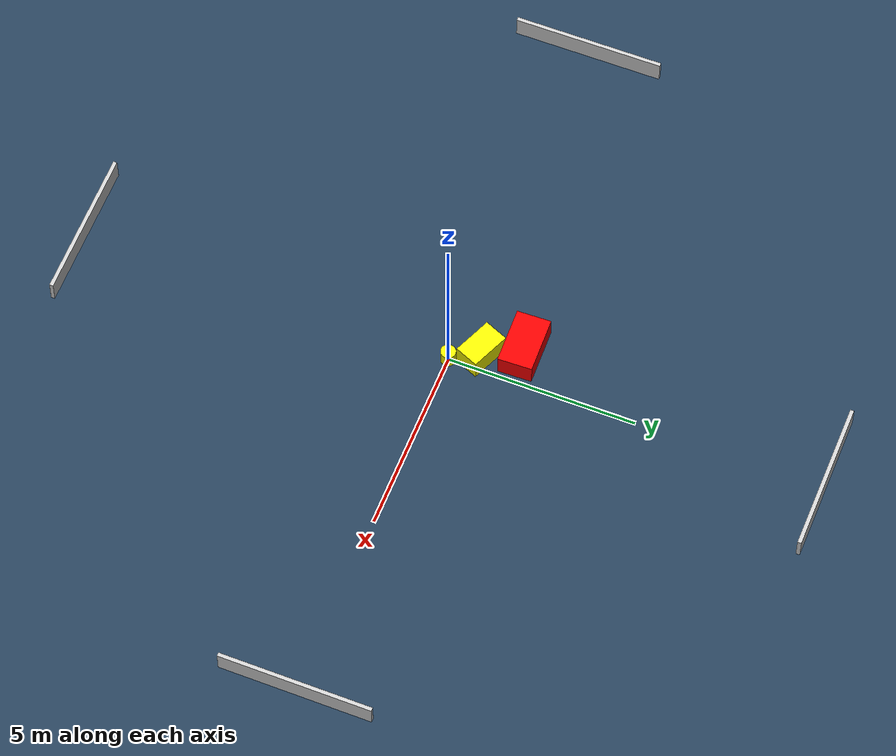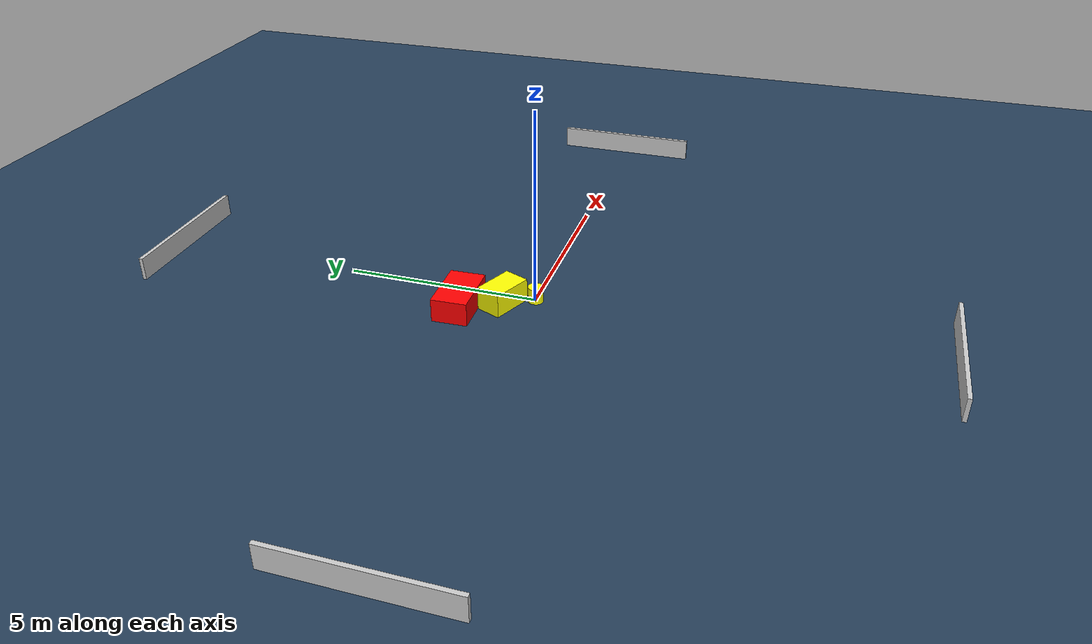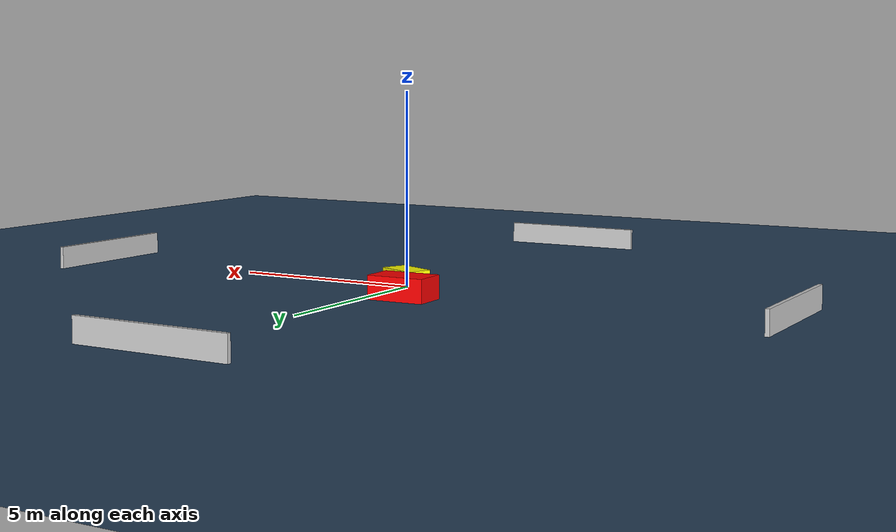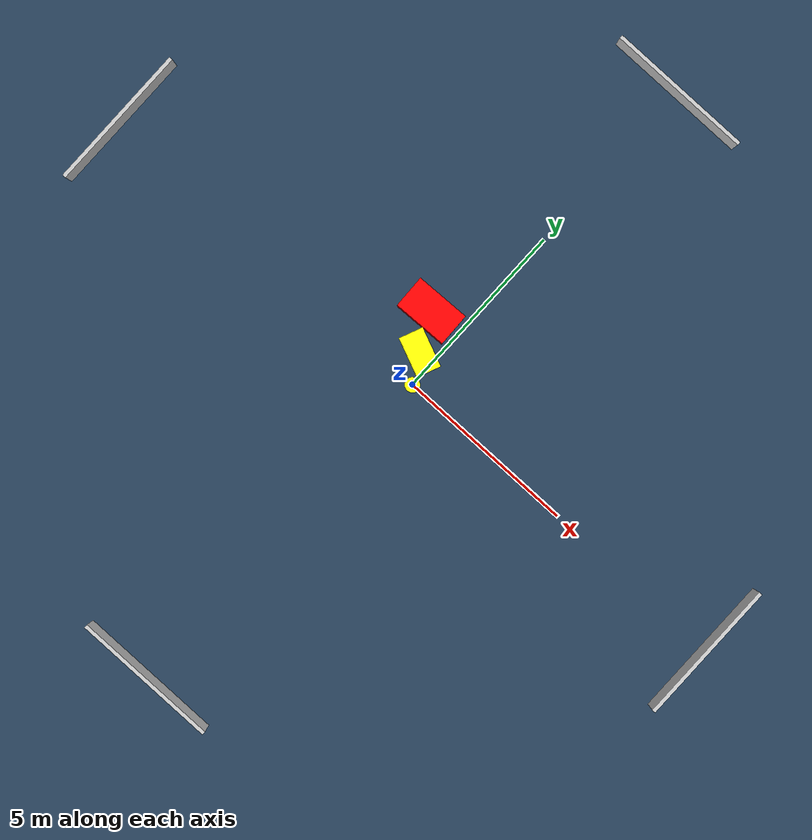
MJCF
<?xml version="1.0" ?>
<mujoco model="generated_environment">
  <option timestep="0.01" integrator="RK4" cone="elliptic"/>
  <default>
    <geom density="1"/>
  </default>
  <asset>
    <texture builtin="gradient" height="3072" name="skybox" rgb1="0.3 0.5 0.7" rgb2="0 0 0" type="skybox" width="512"/>
    <texture builtin="checker" height="300" name="groundplane" rgb1="0.2 0.3 0.4" rgb2="0.1 0.2 0.3" type="2d" width="300"/>
    <material name="groundplane" reflectance="0.2" texrepeat="5 5" texture="groundplane"/>
  </asset>
  <worldbody>
    <light dir="0 0 -1" directional="true" pos="0 0 1.5"/>
    <geom condim="3" friction="0.5 0.005 0.001" material="groundplane" name="floor" pos="0 0 0" size="0 0 0.05" type="plane"/>
    <body name="walls">
      <geom name="wall_1" condim="4" pos="-10.0 0.0 0.3" rgba="0.800000011920929 0.800000011920929 0.800000011920929 1.0" size="0.05 2.0 0.3" type="box"/>
      <geom name="wall_2" condim="4" pos="10.0 0.0 0.3" rgba="0.800000011920929 0.800000011920929 0.800000011920929 1.0" size="0.05 2.0 0.3" type="box"/>
      <geom name="wall_3" condim="4" pos="0.0 -10.0 0.3" rgba="0.800000011920929 0.800000011920929 0.800000011920929 1.0" size="2.0 0.05 0.3" type="box"/>
      <geom name="wall_4" condim="4" pos="0.0 10.0 0.3" rgba="0.800000011920929 0.800000011920929 0.800000011920929 1.0" size="2.0 0.05 0.3" type="box"/>
    </body>
    <body name="robot">
      <joint name="joint_x" type="slide" pos="0 0 0" axis="1 0 0"/>
      <joint name="joint_y" type="slide" pos="0 0 0" axis="0 1 0"/>
      <geom name="robot" type="cylinder" pos="0.0 0.0 0.2" size="0.2 0.2 0.0" mass="5.0" friction="1.0 0.005 0.0001" condim="4" rgba="1.0 1.0 0.0 1.0"/>
    </body>
    <body name="obstacle_1_movable">
      <geom name="obstacle_1_movable" condim="4" pos="-0.4101500088529891 0.730436011373981 0.3" euler="0 0 157.05487309055314" friction="0.0 0.005 0.001" rgba="1.0 1.0 0.0 1.0" size="0.5437466540952716 0.3306188619252338 0.3" type="box" mass="0.1"/>
      <joint type="free"/>
    </body>
    <body name="obstacle_2_static">
      <geom name="obstacle_2_static" condim="4" pos="-0.8985390869779347 1.7001533665733028 0.3" euler="0 0 271.74547652843194" friction="0.0 0.005 0.001" rgba="1.0 0.0 0.0 1.0" size="0.45296077131681206 0.7462122166195593 0.3" type="box"/>
    </body>
  </worldbody>
  <actuator>
    <motor name="actuator_x" joint="joint_x" gear="1" ctrlrange="-1 1"/>
    <motor name="actuator_y" joint="joint_y" gear="1" ctrlrange="-1 1"/>
  </actuator>
</mujoco>
